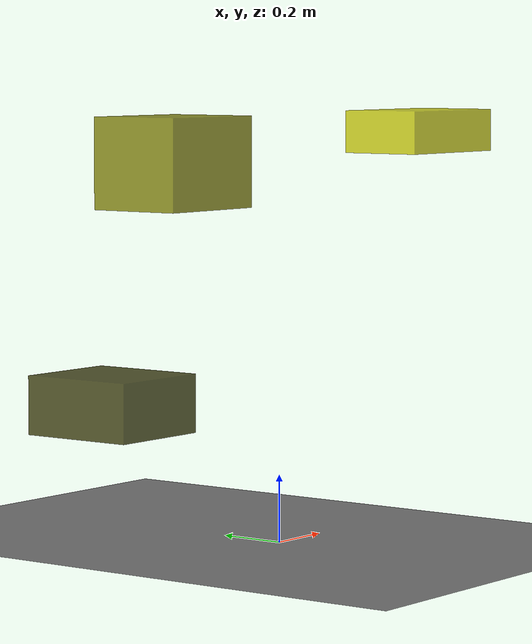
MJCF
<?xml version="1.0"?>
<mujoco model="obstacle_scene">
  <compiler angle="radian" coordinate="local"/>
  <option timestep="0.001" gravity="0 0 -9.81"/>

  <asset>
    <material name="obstacle_mat" rgba="0.8 0.8 0.0 0.8"/>
    <material name="ground_mat" rgba="0.5 0.5 0.5 1"/>
  </asset>

  <worldbody>
    <!-- Ground plane -->
    <geom name="ground" type="plane" size="3 3 0.1" material="ground_mat"/>

    <!-- Obstacles -->
    <body name="obstacle_0" pos="-0.078223 0.569757 0.373450">
      <geom name="obs_0" type="box" size="0.170425 0.185408 0.089735" rgba="0.2 0.2 0.0 0.8"/>
    </body>
    <body name="obstacle_1" pos="-0.117897 0.298928 1.110189">
      <geom name="obs_1" type="box" size="0.185603 0.146712 0.135189" rgba="0.5 0.5 0.0 0.8"/>
    </body>
    <body name="obstacle_2" pos="0.190072 -0.357194 1.207929">
      <geom name="obs_2" type="box" size="0.196919 0.118599 0.059882" rgba="0.8 0.8 0.0 0.8"/>
    </body>
  </worldbody>
</mujoco>
